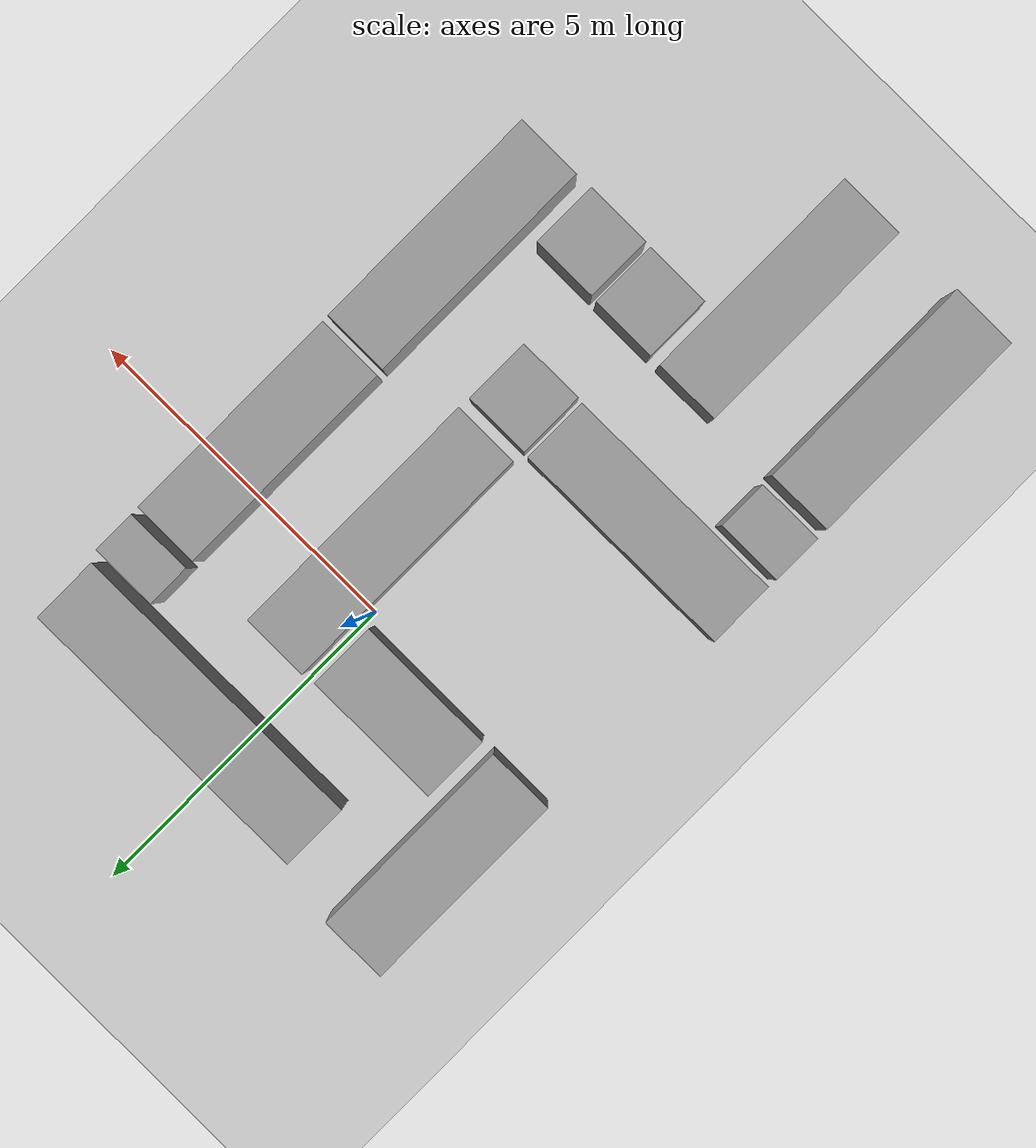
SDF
<sdf version="1.6">
 <world name="default">
  <light name="sun" type="directional">
   <pose>0 0 10 0 -0 0</pose>
   <diffuse>0.8 0.8 0.8 1</diffuse>
   <specular>0.1 0.1 0.1 1</specular>
   <attenuation>
    <range>1000</range>
    <constant>0.9</constant>
    <linear>0.01</linear>
    <quadratic>0.001</quadratic>
   </attenuation>
   <direction>-0.5 0.5 -1</direction>
  </light>
  <model name="ground_plane">
   <static>1</static>
   <link name="link">
    <collision name="collision">
     <geometry><plane><normal>0 0 1</normal><size>100 100</size></plane></geometry>
     <surface><friction><ode><mu>100</mu><mu2>50</mu2></ode></friction></surface>
    </collision>
    <visual name="visual">
     <cast_shadows>0</cast_shadows>
     <geometry><plane><normal>0 0 1</normal><size>100 100</size></plane></geometry>
     <material>
      <script><uri>file://media/materials/scripts/gazebo.material</uri><name>Gazebo/Grey</name></script>
     </material>
    </visual>
   </link>
  </model>
  <gravity>0 0 -1.62</gravity>
  <magnetic_field>6e-06 2.3e-05 -4.2e-05</magnetic_field>
  <atmosphere type="adiabatic"/>
  <physics name="default_physics" default="0" type="ode">
   <max_step_size>0.001</max_step_size>
   <real_time_factor>1</real_time_factor>
   <real_time_update_rate>1000</real_time_update_rate>
  </physics>
  <scene><ambient>0.4 0.4 0.4 1</ambient><background>0.7 0.7 0.7 1</background><shadows>1</shadows></scene>
  <spherical_coordinates>
   <surface_model>EARTH_WGS84</surface_model>
   <latitude_deg>0</latitude_deg>
   <longitude_deg>0</longitude_deg>
   <elevation>0</elevation>
   <heading_deg>0</heading_deg>
  </spherical_coordinates>
  <model name="unit_box_7">
   <pose>2.61528 1.57417 0.5 0 0 -1e-06</pose>
   <link name="link">
    <inertial>
     <mass>1</mass>
     <inertia>
      <ixx>0.166667</ixx>
      <ixy>0</ixy>
      <ixz>0</ixz>
      <iyy>0.166667</iyy>
      <iyz>0</iyz>
      <izz>0.166667</izz>
     </inertia>
    </inertial>
    <collision name="collision"><geometry><box><size>1 0.655237 1</size></box></geometry></collision>
    <visual name="visual">
     <geometry><box><size>1 0.655237 1</size></box></geometry>
     <material>
      <script><name>Gazebo/Grey</name><uri>file://media/materials/scripts/gazebo.material</uri></script>
     </material>
    </visual>
   </link>
  </model>
  <model name="unit_box_8_0_clone">
   <pose>-1.16077 0.633168 0.5 0 0 -1.57287</pose>
   <link name="link">
    <inertial>
     <mass>1</mass>
     <inertia>
      <ixx>0.166667</ixx>
      <ixy>0</ixy>
      <ixz>0</ixz>
      <iyy>0.166667</iyy>
      <iyz>0</iyz>
      <izz>0.166667</izz>
     </inertia>
    </inertial>
    <collision name="collision"><geometry><box><size>1 2.08424 1</size></box></geometry></collision>
    <visual name="visual">
     <geometry><box><size>1 2.08424 1</size></box></geometry>
     <material>
      <script><name>Gazebo/Grey</name><uri>file://media/materials/scripts/gazebo.material</uri></script>
     </material>
    </visual>
   </link>
  </model>
  <model name="unit_box_8_0_clone_0">
   <pose>2.62681 -4.16814 0.499986 -8e-06 0 0</pose>
   <link name="link">
    <inertial>
     <mass>1</mass>
     <inertia>
      <ixx>0.166667</ixx>
      <ixy>0</ixy>
      <ixz>0</ixz>
      <iyy>0.166667</iyy>
      <iyz>0</iyz>
      <izz>0.166667</izz>
     </inertia>
    </inertial>
    <collision name="collision"><geometry><box><size>1 3.58261 1</size></box></geometry></collision>
    <visual name="visual">
     <geometry><box><size>1 3.58261 1</size></box></geometry>
     <material>
      <script><name>Gazebo/Grey</name><uri>file://media/materials/scripts/gazebo.material</uri></script>
     </material>
    </visual>
   </link>
  </model>
  <model name="unit_box_8_0_clone_1">
   <pose>-1.71954 -3.40246 0.5 0 -1e-06 -1.56737</pose>
   <link name="link">
    <inertial>
     <mass>1</mass>
     <inertia>
      <ixx>0.166667</ixx>
      <ixy>0</ixy>
      <ixz>0</ixz>
      <iyy>0.166667</iyy>
      <iyz>0</iyz>
      <izz>0.166667</izz>
     </inertia>
    </inertial>
    <collision name="collision"><geometry><box><size>1 3.40701 1</size></box></geometry></collision>
    <visual name="visual">
     <geometry><box><size>1 3.40701 1</size></box></geometry>
     <material>
      <script><name>Gazebo/Grey</name><uri>file://media/materials/scripts/gazebo.material</uri></script>
     </material>
    </visual>
   </link>
  </model>
  <model name="unit_box_2_clone">
   <pose>0.561472 -3.41254 0.499999 2e-06 -0 0.002425</pose>
   <link name="link">
    <inertial>
     <mass>1</mass>
     <inertia>
      <ixx>0.166667</ixx>
      <ixy>0</ixy>
      <ixz>0</ixz>
      <iyy>0.166667</iyy>
      <iyz>0</iyz>
      <izz>0.166667</izz>
     </inertia>
    </inertial>
    <collision name="collision"><geometry><box><size>1 1 1</size></box></geometry></collision>
    <visual name="visual">
     <geometry><box><size>1 1 1</size></box></geometry>
     <material>
      <script><name>Gazebo/Grey</name><uri>file://media/materials/scripts/gazebo.material</uri></script>
     </material>
    </visual>
   </link>
  </model>
  <model name="unit_box_2_clone_0">
   <pose>0.28032 -5.46006 0.499999 2e-06 0 -1e-06</pose>
   <link name="link">
    <inertial>
     <mass>1</mass>
     <inertia>
      <ixx>0.166667</ixx>
      <ixy>0</ixy>
      <ixz>0</ixz>
      <iyy>0.166667</iyy>
      <iyz>0</iyz>
      <izz>0.166667</izz>
     </inertia>
    </inertial>
    <collision name="collision"><geometry><box><size>1 1 1</size></box></geometry></collision>
    <visual name="visual">
     <geometry><box><size>1 1 1</size></box></geometry>
     <material>
      <script><name>Gazebo/Grey</name><uri>file://media/materials/scripts/gazebo.material</uri></script>
     </material>
    </visual>
   </link>
  </model>
  <model name="unit_box_2_clone_1">
   <pose>-2.93064 -4.42358 0.499999 -0 -2e-06 1e-06</pose>
   <link name="link">
    <inertial>
     <mass>1</mass>
     <inertia>
      <ixx>0.166667</ixx>
      <ixy>0</ixy>
      <ixz>0</ixz>
      <iyy>0.166667</iyy>
      <iyz>0</iyz>
      <izz>0.166667</izz>
     </inertia>
    </inertial>
    <collision name="collision"><geometry><box><size>1 0.756541 1</size></box></geometry></collision>
    <visual name="visual">
     <geometry><box><size>1 0.756541 1</size></box></geometry>
     <material>
      <script><name>Gazebo/Grey</name><uri>file://media/materials/scripts/gazebo.material</uri></script>
     </material>
    </visual>
   </link>
  </model>
  <model name="unit_box_2_clone_2">
   <pose>1.36906 -5.47235 0.499999 2e-06 0 -1e-06</pose>
   <link name="link">
    <inertial>
     <mass>1</mass>
     <inertia>
      <ixx>0.166667</ixx>
      <ixy>0</ixy>
      <ixz>0</ixz>
      <iyy>0.166667</iyy>
      <iyz>0</iyz>
      <izz>0.166667</izz>
     </inertia>
    </inertial>
    <collision name="collision"><geometry><box><size>1 1 1</size></box></geometry></collision>
    <visual name="visual">
     <geometry><box><size>1 1 1</size></box></geometry>
     <material>
      <script><name>Gazebo/Grey</name><uri>file://media/materials/scripts/gazebo.material</uri></script>
     </material>
    </visual>
   </link>
  </model>
  <model name="unit_box_8_0_clone_1_clone">
   <pose>-2.93046 -6.67161 0.499995 3e-06 -0 0</pose>
   <link name="link">
    <inertial>
     <mass>1</mass>
     <inertia>
      <ixx>0.166667</ixx>
      <ixy>0</ixy>
      <ixz>0</ixz>
      <iyy>0.166667</iyy>
      <iyz>0</iyz>
      <izz>0.166667</izz>
     </inertia>
    </inertial>
    <collision name="collision"><geometry><box><size>1 3.40701 1</size></box></geometry></collision>
    <visual name="visual">
     <geometry><box><size>1 3.40701 1</size></box></geometry>
     <material>
      <script><name>Gazebo/Grey</name><uri>file://media/materials/scripts/gazebo.material</uri></script>
     </material>
    </visual>
   </link>
  </model>
  <model name="unit_box_8_0_clone_1_clone_0">
   <pose>-0.884299 -6.66115 0.499995 3e-06 -0 0</pose>
   <link name="link">
    <inertial>
     <mass>1</mass>
     <inertia>
      <ixx>0.166667</ixx>
      <ixy>0</ixy>
      <ixz>0</ixz>
      <iyy>0.166667</iyy>
      <iyz>0</iyz>
      <izz>0.166667</izz>
     </inertia>
    </inertial>
    <collision name="collision"><geometry><box><size>1 3.40701 1</size></box></geometry></collision>
    <visual name="visual">
     <geometry><box><size>1 3.40701 1</size></box></geometry>
     <material>
      <script><name>Gazebo/Grey</name><uri>file://media/materials/scripts/gazebo.material</uri></script>
     </material>
    </visual>
   </link>
  </model>
  <model name="unit_box_8_0_clone_clone">
   <pose>0.576842 -0.781271 0.499962 2e-05 -0 0</pose>
   <link name="link">
    <inertial>
     <mass>1</mass>
     <inertia>
      <ixx>0.166667</ixx>
      <ixy>0</ixy>
      <ixz>0</ixz>
      <iyy>0.166667</iyy>
      <iyz>0</iyz>
      <izz>0.166667</izz>
     </inertia>
    </inertial>
    <collision name="collision"><geometry><box><size>1 3.89687 1</size></box></geometry></collision>
    <visual name="visual">
     <geometry><box><size>1 3.89687 1</size></box></geometry>
     <material>
      <script><name>Gazebo/Grey</name><uri>file://media/materials/scripts/gazebo.material</uri></script>
     </material>
    </visual>
   </link>
  </model>
  <model name="unit_box_8_0_clone_clone_0">
   <pose>2.61856 -0.575639 0.499995 -3e-06 0 0</pose>
   <link name="link">
    <inertial>
     <mass>1</mass>
     <inertia>
      <ixx>0.166667</ixx>
      <ixy>0</ixy>
      <ixz>0</ixz>
      <iyy>0.166667</iyy>
      <iyz>0</iyz>
      <izz>0.166667</izz>
     </inertia>
    </inertial>
    <collision name="collision"><geometry><box><size>0.999995 3.40701 1</size></box></geometry></collision>
    <visual name="visual">
     <geometry><box><size>0.999995 3.40701 1</size></box></geometry>
     <material>
      <script><name>Gazebo/Grey</name><uri>file://media/materials/scripts/gazebo.material</uri></script>
     </material>
    </visual>
   </link>
  </model>
  <model name="unit_box_8_0_clone_clone_1">
   <pose>0.752149 2.5546 0.49986 -5.7e-05 -0 -1.56903</pose>
   <link name="link">
    <inertial>
     <mass>1</mass>
     <inertia>
      <ixx>0.166667</ixx>
      <ixy>0</ixy>
      <ixz>0</ixz>
      <iyy>0.166667</iyy>
      <iyz>0</iyz>
      <izz>0.166667</izz>
     </inertia>
    </inertial>
    <collision name="collision"><geometry><box><size>0.999099 4.56706 0.999978</size></box></geometry></collision>
    <visual name="visual">
     <geometry><box><size>0.999099 4.56706 0.999978</size></box></geometry>
     <material>
      <script><name>Gazebo/Grey</name><uri>file://media/materials/scripts/gazebo.material</uri></script>
     </material>
    </visual>
   </link>
  </model>
  <model name="unit_box_8_0_clone_clone_2">
   <pose>-2.91329 1.68996 0.499999 0 1e-06 -0.001606</pose>
   <link name="link">
    <inertial>
     <mass>1</mass>
     <inertia>
      <ixx>0.166667</ixx>
      <ixy>0</ixy>
      <ixz>0</ixz>
      <iyy>0.166667</iyy>
      <iyz>0</iyz>
      <izz>0.166667</izz>
     </inertia>
    </inertial>
    <collision name="collision"><geometry><box><size>1 3.08753 1</size></box></geometry></collision>
    <visual name="visual">
     <geometry><box><size>1 3.08753 1</size></box></geometry>
     <material>
      <script><name>Gazebo/Grey</name><uri>file://media/materials/scripts/gazebo.material</uri></script>
     </material>
    </visual>
   </link>
  </model>
 </world>
</sdf>
